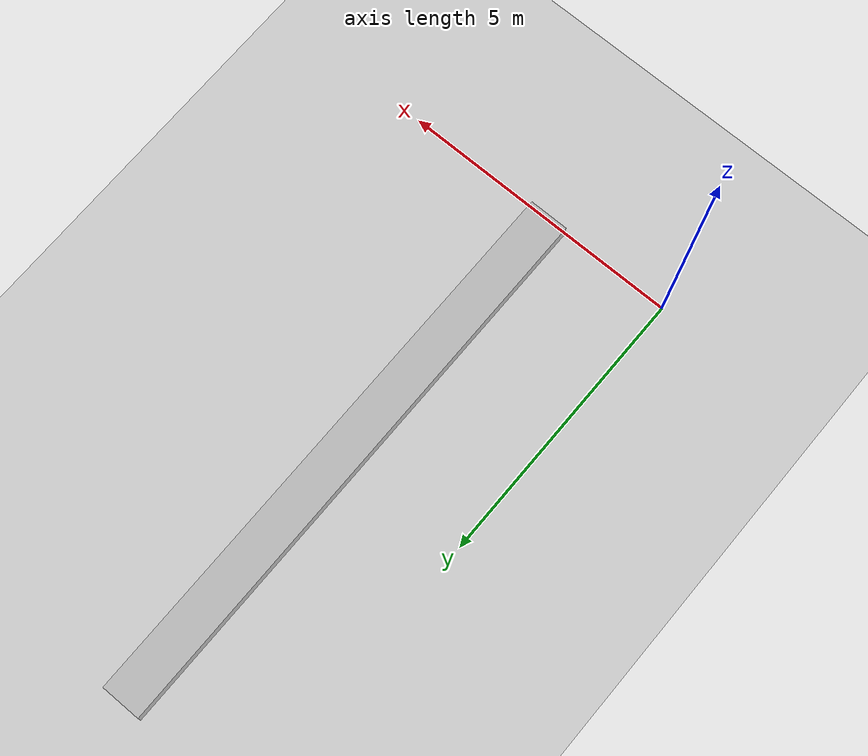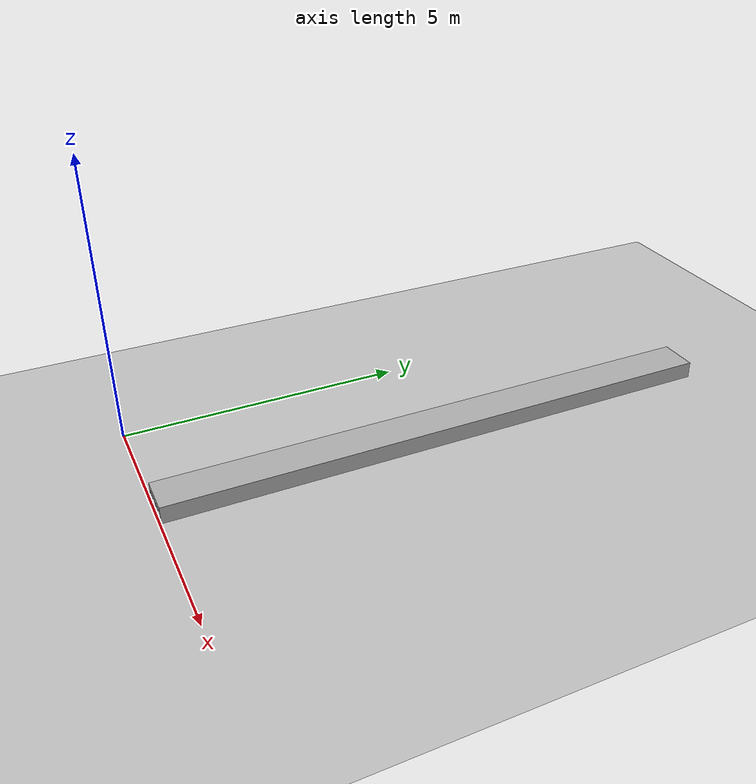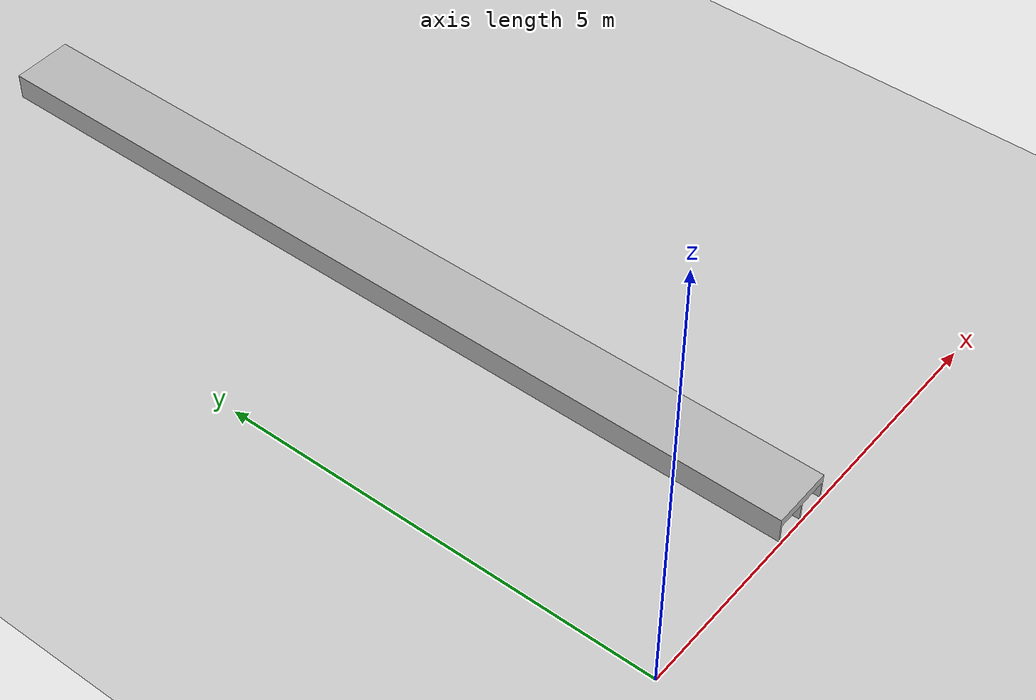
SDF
<sdf version='1.8'>
  <world name='default'>

    <plugin filename="ignition-gazebo-physics-system" name="ignition::gazebo::systems::Physics"></plugin>
    <plugin filename="ignition-gazebo-user-commands-system" name="ignition::gazebo::systems::UserCommands"></plugin>
    <plugin filename="ignition-gazebo-scene-broadcaster-system" name="ignition::gazebo::systems::SceneBroadcaster"></plugin>
    <plugin filename="ignition-gazebo-sensors-system" name="ignition::gazebo::systems::Sensors">
      <render_engine>ogre2</render_engine>
    </plugin>
    <light name='sun' type='directional'>
      <cast_shadows>1</cast_shadows>
      <pose>0 0 10 0 -0 0</pose>
      <diffuse>0.8 0.8 0.8 1</diffuse>
      <specular>0.2 0.2 0.2 1</specular>
      <attenuation>
        <range>1000</range>
        <constant>0.9</constant>
        <linear>0.01</linear>
        <quadratic>0.001</quadratic>
      </attenuation>
      <direction>-0.5 0.1 -0.9</direction>
    </light>

    <model name='ground_plane'>
      <static>1</static>
      <link name='link'>
        <collision name='collision'>
          <geometry>
            <plane>
              <normal>0 0 1</normal>
              <size>100 100</size>
            </plane>
          </geometry>
        </collision>
        <visual name='visual'>
          <geometry>
            <plane>
              <normal>0 0 1</normal>
              <size>100 100</size>
            </plane>
          </geometry>
          <material>
            <ambient>0.8 0.8 0.8 1</ambient>
            <diffuse>0.8 0.8 0.8 1</diffuse>
            <specular>0.8 0.8 0.8 1</specular>
          </material>
        </visual>
      </link>
    </model>

    <gravity>0 0 -9.8</gravity>
    <magnetic_field>6e-06 2.3e-05 -4.2e-05</magnetic_field>
    <atmosphere type='adiabatic'/>

    <scene>
      <ambient>0.4 0.4 0.4 1</ambient>
      <background>0.7 0.7 0.7 1</background>
      <shadows>1</shadows>
    </scene>

    <model name='farm_model 1'>
      <static>1</static>
      <pose>2.64481 0.023041 0 0 -0 0</pose>
      <link name='link'>
        <pose>0 0 0 1.5708 1e-06 3.14159</pose>
        <collision name='collision'>
          <geometry>
            <mesh>
              <uri>model://farm_model1/meshes/farm.stl</uri>
              <scale>0.001 0.001 0.001</scale>
            </mesh>
          </geometry>
        </collision>
        <visual name='visual'>
          <geometry>
            <mesh>
              <uri>model://farm_model1/meshes/farm.stl</uri>
              <scale>0.001 0.001 0.001</scale>
            </mesh>
          </geometry>
        </visual>
      </link>
    </model>

  </world>
</sdf>
